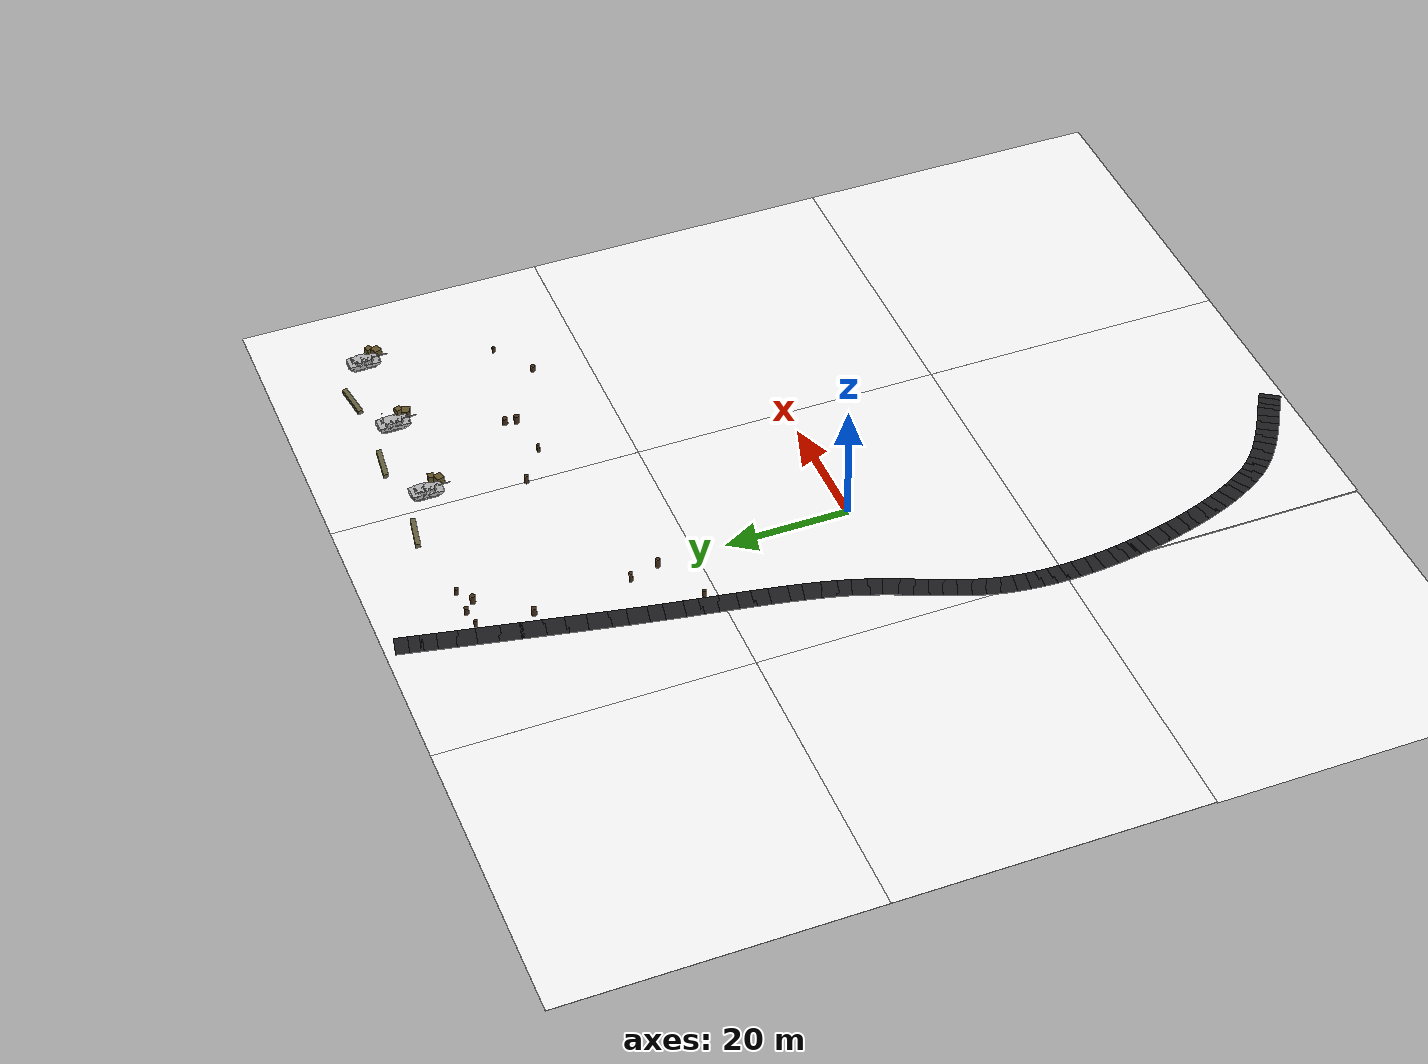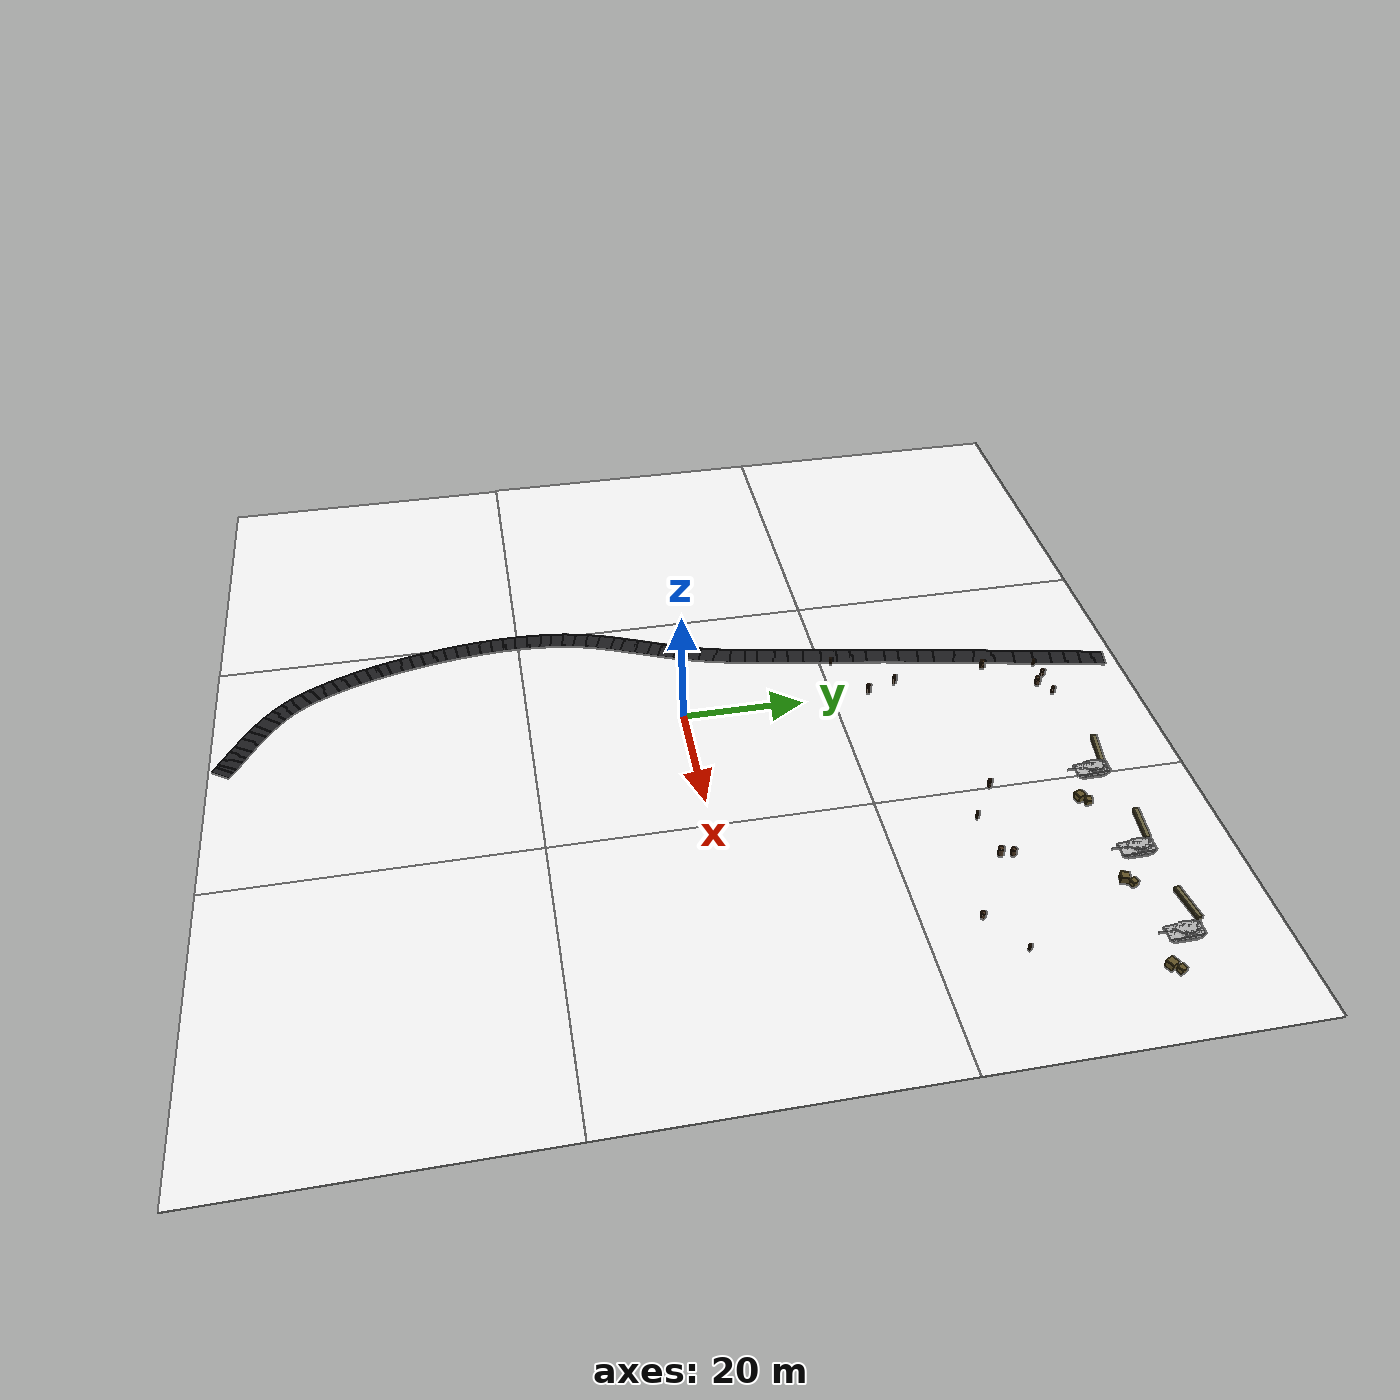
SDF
<sdf version="1.9">
 <world name="military_recon_mini">
  <physics type="ode">
   <max_step_size>0.004</max_step_size>
   <real_time_factor>1.0</real_time_factor>
   <real_time_update_rate>250</real_time_update_rate>
  </physics>
  <gravity>0 0 -9.8</gravity>
  <magnetic_field>6e-06 2.3e-05 -4.2e-05</magnetic_field>
  <atmosphere type="adiabatic"/>
  <scene>
   <grid>false</grid>
   <ambient>0.4 0.4 0.4 1</ambient>
   <background>0.7 0.75 0.8 1</background>
   <shadows>true</shadows>
  </scene>
  <model name="ground_plane">
   <static>true</static>
   <link name="link">
    <collision name="collision">
     <geometry><plane><normal>0 0 1</normal><size>150 150</size></plane></geometry>
    </collision>
   </link>
  </model>
  <include>
   <uri>model://grass_field</uri>
   <name>grass_0</name>
   <pose>-50.000 -50.000 0.000 0.000 0.000 3.142</pose>
  </include>
  <include>
   <uri>model://grass_field</uri>
   <name>grass_1</name>
   <pose>0.000 -50.000 0.000 0.000 0.000 1.571</pose>
  </include>
  <include>
   <uri>model://grass_field</uri>
   <name>grass_2</name>
   <pose>50.000 -50.000 0.000 0.000 0.000 4.712</pose>
  </include>
  <include>
   <uri>model://grass_field</uri>
   <name>grass_3</name>
   <pose>-50.000 0.000 0.000 0.000 0.000 0.000</pose>
  </include>
  <include><uri>model://grass_field</uri><name>grass_4</name></include>
  <include>
   <uri>model://grass_field</uri>
   <name>grass_5</name>
   <pose>50.000 0.000 0.000 0.000 0.000 0.000</pose>
  </include>
  <include>
   <uri>model://grass_field</uri>
   <name>grass_6</name>
   <pose>-50.000 50.000 0.000 0.000 0.000 3.142</pose>
  </include>
  <include>
   <uri>model://grass_field</uri>
   <name>grass_7</name>
   <pose>0.000 50.000 0.000 0.000 0.000 0.000</pose>
  </include>
  <include>
   <uri>model://grass_field</uri>
   <name>grass_8</name>
   <pose>50.000 50.000 0.000 0.000 0.000 1.571</pose>
  </include>
  <model name="tlc_stump_1">
   <static>true</static>
   <pose>-2.280 60.697 0 0 0 4.554</pose>
   <link name="link">
    <visual name="v">
     <pose>0 0 0.568 0 0 0</pose>
     <geometry><cylinder><radius>0.275</radius><length>1.136</length></cylinder></geometry>
     <material><ambient>0.20 0.14 0.08 1</ambient><diffuse>0.28 0.19 0.10 1</diffuse></material>
    </visual>
    <collision name="c">
     <pose>0 0 0.568 0 0 0</pose>
     <geometry><cylinder><radius>0.275</radius><length>1.136</length></cylinder></geometry>
    </collision>
   </link>
  </model>
  <model name="tlc_stump_2">
   <static>true</static>
   <pose>0.638 61.153 0 0 0 4.130</pose>
   <link name="link">
    <visual name="v">
     <pose>0 0 0.640 0 0 0</pose>
     <geometry><cylinder><radius>0.360</radius><length>1.280</length></cylinder></geometry>
     <material><ambient>0.20 0.14 0.08 1</ambient><diffuse>0.28 0.19 0.10 1</diffuse></material>
    </visual>
    <collision name="c">
     <pose>0 0 0.640 0 0 0</pose>
     <geometry><cylinder><radius>0.360</radius><length>1.280</length></cylinder></geometry>
    </collision>
   </link>
  </model>
  <model name="tlc_stump_3">
   <static>true</static>
   <pose>2.607 59.529 0 0 0 4.082</pose>
   <link name="link">
    <visual name="v">
     <pose>0 0 0.711 0 0 0</pose>
     <geometry><cylinder><radius>0.437</radius><length>1.421</length></cylinder></geometry>
     <material><ambient>0.20 0.14 0.08 1</ambient><diffuse>0.28 0.19 0.10 1</diffuse></material>
    </visual>
    <collision name="c">
     <pose>0 0 0.711 0 0 0</pose>
     <geometry><cylinder><radius>0.437</radius><length>1.421</length></cylinder></geometry>
    </collision>
   </link>
  </model>
  <model name="tlc_stump_4">
   <static>true</static>
   <pose>5.213 61.244 0 0 0 1.326</pose>
   <link name="link">
    <visual name="v">
     <pose>0 0 0.601 0 0 0</pose>
     <geometry><cylinder><radius>0.309</radius><length>1.201</length></cylinder></geometry>
     <material><ambient>0.20 0.14 0.08 1</ambient><diffuse>0.28 0.19 0.10 1</diffuse></material>
    </visual>
    <collision name="c">
     <pose>0 0 0.601 0 0 0</pose>
     <geometry><cylinder><radius>0.309</radius><length>1.201</length></cylinder></geometry>
    </collision>
   </link>
  </model>
  <model name="tlc_stump_5">
   <static>true</static>
   <pose>-3.271 51.875 0 0 0 3.190</pose>
   <link name="link">
    <visual name="v">
     <pose>0 0 0.725 0 0 0</pose>
     <geometry><cylinder><radius>0.402</radius><length>1.449</length></cylinder></geometry>
     <material><ambient>0.20 0.14 0.08 1</ambient><diffuse>0.28 0.19 0.10 1</diffuse></material>
    </visual>
    <collision name="c">
     <pose>0 0 0.725 0 0 0</pose>
     <geometry><cylinder><radius>0.402</radius><length>1.449</length></cylinder></geometry>
    </collision>
   </link>
  </model>
  <model name="tlc_stump_6">
   <static>true</static>
   <pose>-1.909 36.066 0 0 0 0.709</pose>
   <link name="link">
    <visual name="v">
     <pose>0 0 0.867 0 0 0</pose>
     <geometry><cylinder><radius>0.296</radius><length>1.735</length></cylinder></geometry>
     <material><ambient>0.20 0.14 0.08 1</ambient><diffuse>0.28 0.19 0.10 1</diffuse></material>
    </visual>
    <collision name="c">
     <pose>0 0 0.867 0 0 0</pose>
     <geometry><cylinder><radius>0.296</radius><length>1.735</length></cylinder></geometry>
    </collision>
   </link>
  </model>
  <model name="tlc_stump_7">
   <static>true</static>
   <pose>-0.506 31.235 0 0 0 0.419</pose>
   <link name="link">
    <visual name="v">
     <pose>0 0 0.845 0 0 0</pose>
     <geometry><cylinder><radius>0.341</radius><length>1.690</length></cylinder></geometry>
     <material><ambient>0.20 0.14 0.08 1</ambient><diffuse>0.28 0.19 0.10 1</diffuse></material>
    </visual>
    <collision name="c">
     <pose>0 0 0.845 0 0 0</pose>
     <geometry><cylinder><radius>0.341</radius><length>1.690</length></cylinder></geometry>
    </collision>
   </link>
  </model>
  <model name="tlc_stump_8">
   <static>true</static>
   <pose>-9.025 26.987 0 0 0 1.934</pose>
   <link name="link">
    <visual name="v">
     <pose>0 0 0.586 0 0 0</pose>
     <geometry><cylinder><radius>0.296</radius><length>1.172</length></cylinder></geometry>
     <material><ambient>0.20 0.14 0.08 1</ambient><diffuse>0.28 0.19 0.10 1</diffuse></material>
    </visual>
    <collision name="c">
     <pose>0 0 0.586 0 0 0</pose>
     <geometry><cylinder><radius>0.296</radius><length>1.172</length></cylinder></geometry>
    </collision>
   </link>
  </model>
  <model name="tlm_stump_0">
   <static>true</static>
   <pose>24.857 43.441 0 0 0 2.416</pose>
   <link name="link">
    <visual name="v">
     <pose>0 0 0.758 0 0 0</pose>
     <geometry><cylinder><radius>0.336</radius><length>1.517</length></cylinder></geometry>
     <material><ambient>0.20 0.14 0.08 1</ambient><diffuse>0.28 0.19 0.10 1</diffuse></material>
    </visual>
    <collision name="c">
     <pose>0 0 0.758 0 0 0</pose>
     <geometry><cylinder><radius>0.336</radius><length>1.517</length></cylinder></geometry>
    </collision>
   </link>
  </model>
  <model name="tlm_stump_1">
   <static>true</static>
   <pose>30.989 39.410 0 0 0 2.974</pose>
   <link name="link">
    <visual name="v">
     <pose>0 0 0.735 0 0 0</pose>
     <geometry><cylinder><radius>0.250</radius><length>1.470</length></cylinder></geometry>
     <material><ambient>0.20 0.14 0.08 1</ambient><diffuse>0.28 0.19 0.10 1</diffuse></material>
    </visual>
    <collision name="c">
     <pose>0 0 0.735 0 0 0</pose>
     <geometry><cylinder><radius>0.250</radius><length>1.470</length></cylinder></geometry>
    </collision>
   </link>
  </model>
  <model name="tlm_stump_2">
   <static>true</static>
   <pose>39.168 42.152 0 0 0 0.625</pose>
   <link name="link">
    <visual name="v">
     <pose>0 0 0.620 0 0 0</pose>
     <geometry><cylinder><radius>0.439</radius><length>1.240</length></cylinder></geometry>
     <material><ambient>0.20 0.14 0.08 1</ambient><diffuse>0.28 0.19 0.10 1</diffuse></material>
    </visual>
    <collision name="c">
     <pose>0 0 0.620 0 0 0</pose>
     <geometry><cylinder><radius>0.439</radius><length>1.240</length></cylinder></geometry>
    </collision>
   </link>
  </model>
  <model name="tlm_stump_3">
   <static>true</static>
   <pose>38.815 40.336 0 0 0 0.007</pose>
   <link name="link">
    <visual name="v">
     <pose>0 0 0.715 0 0 0</pose>
     <geometry><cylinder><radius>0.449</radius><length>1.430</length></cylinder></geometry>
     <material><ambient>0.20 0.14 0.08 1</ambient><diffuse>0.28 0.19 0.10 1</diffuse></material>
    </visual>
    <collision name="c">
     <pose>0 0 0.715 0 0 0</pose>
     <geometry><cylinder><radius>0.449</radius><length>1.430</length></cylinder></geometry>
    </collision>
   </link>
  </model>
  <model name="tlm_stump_4">
   <static>true</static>
   <pose>49.836 33.850 0 0 0 4.689</pose>
   <link name="link">
    <visual name="v">
     <pose>0 0 0.513 0 0 0</pose>
     <geometry><cylinder><radius>0.383</radius><length>1.026</length></cylinder></geometry>
     <material><ambient>0.20 0.14 0.08 1</ambient><diffuse>0.28 0.19 0.10 1</diffuse></material>
    </visual>
    <collision name="c">
     <pose>0 0 0.513 0 0 0</pose>
     <geometry><cylinder><radius>0.383</radius><length>1.026</length></cylinder></geometry>
    </collision>
   </link>
  </model>
  <model name="tlm_stump_5">
   <static>true</static>
   <pose>56.606 38.242 0 0 0 4.817</pose>
   <link name="link">
    <visual name="v">
     <pose>0 0 0.516 0 0 0</pose>
     <geometry><cylinder><radius>0.257</radius><length>1.033</length></cylinder></geometry>
     <material><ambient>0.20 0.14 0.08 1</ambient><diffuse>0.28 0.19 0.10 1</diffuse></material>
    </visual>
    <collision name="c">
     <pose>0 0 0.516 0 0 0</pose>
     <geometry><cylinder><radius>0.257</radius><length>1.033</length></cylinder></geometry>
    </collision>
   </link>
  </model>
  <include>
   <uri>model://m1-abrams</uri>
   <name>abrams_0</name>
   <pose>25.000 60.000 1.5 1.57 0.000 1.57</pose>
  </include>
  <model name="sandbags_0">
   <static>true</static>
   <pose>20.000 63.000 0.35 0 0 -0.166</pose>
   <link name="link">
    <visual name="v">
     <geometry><box><size>6.00 0.8 0.7</size></box></geometry>
     <material><ambient>0.30 0.28 0.18 1</ambient><diffuse>0.42 0.39 0.25 1</diffuse></material>
    </visual>
    <collision name="c"><geometry><box><size>6.00 0.8 0.7</size></box></geometry></collision>
   </link>
  </model>
  <model name="crate_0">
   <static>true</static>
   <pose>30.000 56.000 0.650 0 0 0.289</pose>
   <link name="link">
    <visual name="v">
     <geometry><box><size>1.30 1.30 1.30</size></box></geometry>
     <material><ambient>0.28 0.24 0.12 1</ambient><diffuse>0.40 0.34 0.16 1</diffuse></material>
    </visual>
    <collision name="c"><geometry><box><size>1.30 1.30 1.30</size></box></geometry></collision>
   </link>
  </model>
  <model name="crate_1">
   <static>true</static>
   <pose>31.000 57.000 0.500 0 0 1.495</pose>
   <link name="link">
    <visual name="v">
     <geometry><box><size>1.00 1.00 1.00</size></box></geometry>
     <material><ambient>0.28 0.24 0.12 1</ambient><diffuse>0.40 0.34 0.16 1</diffuse></material>
    </visual>
    <collision name="c"><geometry><box><size>1.00 1.00 1.00</size></box></geometry></collision>
   </link>
  </model>
  <include>
   <uri>model://m1-abrams</uri>
   <name>abrams_1</name>
   <pose>42.000 60.000 1.5 1.57 0.000 1.57</pose>
  </include>
  <model name="sandbags_1">
   <static>true</static>
   <pose>37.000 63.000 0.35 0 0 -0.106</pose>
   <link name="link">
    <visual name="v">
     <geometry><box><size>6.00 0.8 0.7</size></box></geometry>
     <material><ambient>0.30 0.28 0.18 1</ambient><diffuse>0.42 0.39 0.25 1</diffuse></material>
    </visual>
    <collision name="c"><geometry><box><size>6.00 0.8 0.7</size></box></geometry></collision>
   </link>
  </model>
  <model name="crate_2">
   <static>true</static>
   <pose>47.000 56.000 0.650 0 0 1.251</pose>
   <link name="link">
    <visual name="v">
     <geometry><box><size>1.30 1.30 1.30</size></box></geometry>
     <material><ambient>0.28 0.24 0.12 1</ambient><diffuse>0.40 0.34 0.16 1</diffuse></material>
    </visual>
    <collision name="c"><geometry><box><size>1.30 1.30 1.30</size></box></geometry></collision>
   </link>
  </model>
  <model name="crate_3">
   <static>true</static>
   <pose>48.000 57.000 0.500 0 0 1.861</pose>
   <link name="link">
    <visual name="v">
     <geometry><box><size>1.00 1.00 1.00</size></box></geometry>
     <material><ambient>0.28 0.24 0.12 1</ambient><diffuse>0.40 0.34 0.16 1</diffuse></material>
    </visual>
    <collision name="c"><geometry><box><size>1.00 1.00 1.00</size></box></geometry></collision>
   </link>
  </model>
  <include>
   <uri>model://m1-abrams</uri>
   <name>abrams_2</name>
   <pose>58.000 60.000 1.5 1.57 0.000 1.57</pose>
  </include>
  <model name="sandbags_2">
   <static>true</static>
   <pose>53.000 63.000 0.35 0 0 0.139</pose>
   <link name="link">
    <visual name="v">
     <geometry><box><size>6.00 0.8 0.7</size></box></geometry>
     <material><ambient>0.30 0.28 0.18 1</ambient><diffuse>0.42 0.39 0.25 1</diffuse></material>
    </visual>
    <collision name="c"><geometry><box><size>6.00 0.8 0.7</size></box></geometry></collision>
   </link>
  </model>
  <model name="crate_4">
   <static>true</static>
   <pose>63.000 56.000 0.650 0 0 1.993</pose>
   <link name="link">
    <visual name="v">
     <geometry><box><size>1.30 1.30 1.30</size></box></geometry>
     <material><ambient>0.28 0.24 0.12 1</ambient><diffuse>0.40 0.34 0.16 1</diffuse></material>
    </visual>
    <collision name="c"><geometry><box><size>1.30 1.30 1.30</size></box></geometry></collision>
   </link>
  </model>
  <model name="crate_5">
   <static>true</static>
   <pose>64.000 57.000 0.500 0 0 0.363</pose>
   <link name="link">
    <visual name="v">
     <geometry><box><size>1.00 1.00 1.00</size></box></geometry>
     <material><ambient>0.28 0.24 0.12 1</ambient><diffuse>0.40 0.34 0.16 1</diffuse></material>
    </visual>
    <collision name="c"><geometry><box><size>1.00 1.00 1.00</size></box></geometry></collision>
   </link>
  </model>
  <model name="road_0">
   <static>true</static>
   <pose>-2.171 72.174 0.02 0 0 -1.7745</pose>
   <link name="link">
    <visual name="v">
     <geometry><box><size>2.087 3.50 0.04</size></box></geometry>
     <material><ambient>0.08 0.08 0.09 1</ambient><diffuse>0.12 0.12 0.13 1</diffuse></material>
    </visual>
   </link>
  </model>
  <model name="road_1">
   <static>true</static>
   <pose>-2.557 70.307 0.02 0 0 -1.7753</pose>
   <link name="link">
    <visual name="v">
     <geometry><box><size>2.526 3.50 0.04</size></box></geometry>
     <material><ambient>0.08 0.08 0.09 1</ambient><diffuse>0.12 0.12 0.13 1</diffuse></material>
    </visual>
   </link>
  </model>
  <model name="road_2">
   <static>true</static>
   <pose>-3.027 68.043 0.02 0 0 -1.7756</pose>
   <link name="link">
    <visual name="v">
     <geometry><box><size>2.898 3.50 0.04</size></box></geometry>
     <material><ambient>0.08 0.08 0.09 1</ambient><diffuse>0.12 0.12 0.13 1</diffuse></material>
    </visual>
   </link>
  </model>
  <model name="road_3">
   <static>true</static>
   <pose>-3.567 65.447 0.02 0 0 -1.7757</pose>
   <link name="link">
    <visual name="v">
     <geometry><box><size>3.205 3.50 0.04</size></box></geometry>
     <material><ambient>0.08 0.08 0.09 1</ambient><diffuse>0.12 0.12 0.13 1</diffuse></material>
    </visual>
   </link>
  </model>
  <model name="road_4">
   <static>true</static>
   <pose>-4.161 62.583 0.02 0 0 -1.7755</pose>
   <link name="link">
    <visual name="v">
     <geometry><box><size>3.446 3.50 0.04</size></box></geometry>
     <material><ambient>0.08 0.08 0.09 1</ambient><diffuse>0.12 0.12 0.13 1</diffuse></material>
    </visual>
   </link>
  </model>
  <model name="road_5">
   <static>true</static>
   <pose>-4.798 59.515 0.02 0 0 -1.7752</pose>
   <link name="link">
    <visual name="v">
     <geometry><box><size>3.621 3.50 0.04</size></box></geometry>
     <material><ambient>0.08 0.08 0.09 1</ambient><diffuse>0.12 0.12 0.13 1</diffuse></material>
    </visual>
   </link>
  </model>
  <model name="road_6">
   <static>true</static>
   <pose>-5.462 56.307 0.02 0 0 -1.7748</pose>
   <link name="link">
    <visual name="v">
     <geometry><box><size>3.731 3.50 0.04</size></box></geometry>
     <material><ambient>0.08 0.08 0.09 1</ambient><diffuse>0.12 0.12 0.13 1</diffuse></material>
    </visual>
   </link>
  </model>
  <model name="road_7">
   <static>true</static>
   <pose>-6.141 53.023 0.02 0 0 -1.7742</pose>
   <link name="link">
    <visual name="v">
     <geometry><box><size>3.775 3.50 0.04</size></box></geometry>
     <material><ambient>0.08 0.08 0.09 1</ambient><diffuse>0.12 0.12 0.13 1</diffuse></material>
    </visual>
   </link>
  </model>
  <model name="road_8">
   <static>true</static>
   <pose>-6.819 49.728 0.02 0 0 -1.7734</pose>
   <link name="link">
    <visual name="v">
     <geometry><box><size>3.753 3.50 0.04</size></box></geometry>
     <material><ambient>0.08 0.08 0.09 1</ambient><diffuse>0.12 0.12 0.13 1</diffuse></material>
    </visual>
   </link>
  </model>
  <model name="road_9">
   <static>true</static>
   <pose>-7.483 46.486 0.02 0 0 -1.7724</pose>
   <link name="link">
    <visual name="v">
     <geometry><box><size>3.666 3.50 0.04</size></box></geometry>
     <material><ambient>0.08 0.08 0.09 1</ambient><diffuse>0.12 0.12 0.13 1</diffuse></material>
    </visual>
   </link>
  </model>
  <model name="road_10">
   <static>true</static>
   <pose>-8.120 43.362 0.02 0 0 -1.7711</pose>
   <link name="link">
    <visual name="v">
     <geometry><box><size>3.512 3.50 0.04</size></box></geometry>
     <material><ambient>0.08 0.08 0.09 1</ambient><diffuse>0.12 0.12 0.13 1</diffuse></material>
    </visual>
   </link>
  </model>
  <model name="road_11">
   <static>true</static>
   <pose>-8.715 40.418 0.02 0 0 -1.7693</pose>
   <link name="link">
    <visual name="v">
     <geometry><box><size>3.293 3.50 0.04</size></box></geometry>
     <material><ambient>0.08 0.08 0.09 1</ambient><diffuse>0.12 0.12 0.13 1</diffuse></material>
    </visual>
   </link>
  </model>
  <model name="road_12">
   <static>true</static>
   <pose>-9.263 37.646 0.02 0 0 -1.7625</pose>
   <link name="link">
    <visual name="v">
     <geometry><box><size>3.158 3.50 0.04</size></box></geometry>
     <material><ambient>0.08 0.08 0.09 1</ambient><diffuse>0.12 0.12 0.13 1</diffuse></material>
    </visual>
   </link>
  </model>
  <model name="road_13">
   <static>true</static>
   <pose>-9.774 34.941 0.02 0 0 -1.7529</pose>
   <link name="link">
    <visual name="v">
     <geometry><box><size>3.148 3.50 0.04</size></box></geometry>
     <material><ambient>0.08 0.08 0.09 1</ambient><diffuse>0.12 0.12 0.13 1</diffuse></material>
    </visual>
   </link>
  </model>
  <model name="road_14">
   <static>true</static>
   <pose>-10.262 32.244 0.02 0 0 -1.7461</pose>
   <link name="link">
    <visual name="v">
     <geometry><box><size>3.134 3.50 0.04</size></box></geometry>
     <material><ambient>0.08 0.08 0.09 1</ambient><diffuse>0.12 0.12 0.13 1</diffuse></material>
    </visual>
   </link>
  </model>
  <model name="road_15">
   <static>true</static>
   <pose>-10.731 29.560 0.02 0 0 -1.7421</pose>
   <link name="link">
    <visual name="v">
     <geometry><box><size>3.116 3.50 0.04</size></box></geometry>
     <material><ambient>0.08 0.08 0.09 1</ambient><diffuse>0.12 0.12 0.13 1</diffuse></material>
    </visual>
   </link>
  </model>
  <model name="road_16">
   <static>true</static>
   <pose>-11.191 26.895 0.02 0 0 -1.7409</pose>
   <link name="link">
    <visual name="v">
     <geometry><box><size>3.094 3.50 0.04</size></box></geometry>
     <material><ambient>0.08 0.08 0.09 1</ambient><diffuse>0.12 0.12 0.13 1</diffuse></material>
    </visual>
   </link>
  </model>
  <model name="road_17">
   <static>true</static>
   <pose>-11.647 24.252 0.02 0 0 -1.7425</pose>
   <link name="link">
    <visual name="v">
     <geometry><box><size>3.069 3.50 0.04</size></box></geometry>
     <material><ambient>0.08 0.08 0.09 1</ambient><diffuse>0.12 0.12 0.13 1</diffuse></material>
    </visual>
   </link>
  </model>
  <model name="road_18">
   <static>true</static>
   <pose>-12.106 21.638 0.02 0 0 -1.7471</pose>
   <link name="link">
    <visual name="v">
     <geometry><box><size>3.039 3.50 0.04</size></box></geometry>
     <material><ambient>0.08 0.08 0.09 1</ambient><diffuse>0.12 0.12 0.13 1</diffuse></material>
    </visual>
   </link>
  </model>
  <model name="road_19">
   <static>true</static>
   <pose>-12.576 19.059 0.02 0 0 -1.7548</pose>
   <link name="link">
    <visual name="v">
     <geometry><box><size>3.006 3.50 0.04</size></box></geometry>
     <material><ambient>0.08 0.08 0.09 1</ambient><diffuse>0.12 0.12 0.13 1</diffuse></material>
    </visual>
   </link>
  </model>
  <model name="road_20">
   <static>true</static>
   <pose>-13.064 16.518 0.02 0 0 -1.7658</pose>
   <link name="link">
    <visual name="v">
     <geometry><box><size>2.969 3.50 0.04</size></box></geometry>
     <material><ambient>0.08 0.08 0.09 1</ambient><diffuse>0.12 0.12 0.13 1</diffuse></material>
    </visual>
   </link>
  </model>
  <model name="road_21">
   <static>true</static>
   <pose>-13.575 14.021 0.02 0 0 -1.7802</pose>
   <link name="link">
    <visual name="v">
     <geometry><box><size>2.928 3.50 0.04</size></box></geometry>
     <material><ambient>0.08 0.08 0.09 1</ambient><diffuse>0.12 0.12 0.13 1</diffuse></material>
    </visual>
   </link>
  </model>
  <model name="road_22">
   <static>true</static>
   <pose>-14.118 11.574 0.02 0 0 -1.7982</pose>
   <link name="link">
    <visual name="v">
     <geometry><box><size>2.885 3.50 0.04</size></box></geometry>
     <material><ambient>0.08 0.08 0.09 1</ambient><diffuse>0.12 0.12 0.13 1</diffuse></material>
    </visual>
   </link>
  </model>
  <model name="road_23">
   <static>true</static>
   <pose>-14.699 9.182 0.02 0 0 -1.8201</pose>
   <link name="link">
    <visual name="v">
     <geometry><box><size>2.839 3.50 0.04</size></box></geometry>
     <material><ambient>0.08 0.08 0.09 1</ambient><diffuse>0.12 0.12 0.13 1</diffuse></material>
    </visual>
   </link>
  </model>
  <model name="road_24">
   <static>true</static>
   <pose>-15.338 6.852 0.02 0 0 -1.8574</pose>
   <link name="link">
    <visual name="v">
     <geometry><box><size>2.794 3.50 0.04</size></box></geometry>
     <material><ambient>0.08 0.08 0.09 1</ambient><diffuse>0.12 0.12 0.13 1</diffuse></material>
    </visual>
   </link>
  </model>
  <model name="road_25">
   <static>true</static>
   <pose>-16.059 4.589 0.02 0 0 -1.9016</pose>
   <link name="link">
    <visual name="v">
     <geometry><box><size>2.757 3.50 0.04</size></box></geometry>
     <material><ambient>0.08 0.08 0.09 1</ambient><diffuse>0.12 0.12 0.13 1</diffuse></material>
    </visual>
   </link>
  </model>
  <model name="road_26">
   <static>true</static>
   <pose>-16.858 2.390 0.02 0 0 -1.9367</pose>
   <link name="link">
    <visual name="v">
     <geometry><box><size>2.724 3.50 0.04</size></box></geometry>
     <material><ambient>0.08 0.08 0.09 1</ambient><diffuse>0.12 0.12 0.13 1</diffuse></material>
    </visual>
   </link>
  </model>
  <model name="road_27">
   <static>true</static>
   <pose>-17.711 0.245 0.02 0 0 -1.9622</pose>
   <link name="link">
    <visual name="v">
     <geometry><box><size>2.693 3.50 0.04</size></box></geometry>
     <material><ambient>0.08 0.08 0.09 1</ambient><diffuse>0.12 0.12 0.13 1</diffuse></material>
    </visual>
   </link>
  </model>
  <model name="road_28">
   <static>true</static>
   <pose>-18.596 -1.854 0.02 0 0 -1.9777</pose>
   <link name="link">
    <visual name="v">
     <geometry><box><size>2.663 3.50 0.04</size></box></geometry>
     <material><ambient>0.08 0.08 0.09 1</ambient><diffuse>0.12 0.12 0.13 1</diffuse></material>
    </visual>
   </link>
  </model>
  <model name="road_29">
   <static>true</static>
   <pose>-19.491 -3.915 0.02 0 0 -1.9829</pose>
   <link name="link">
    <visual name="v">
     <geometry><box><size>2.632 3.50 0.04</size></box></geometry>
     <material><ambient>0.08 0.08 0.09 1</ambient><diffuse>0.12 0.12 0.13 1</diffuse></material>
    </visual>
   </link>
  </model>
  <model name="road_30">
   <static>true</static>
   <pose>-20.372 -5.948 0.02 0 0 -1.9772</pose>
   <link name="link">
    <visual name="v">
     <geometry><box><size>2.600 3.50 0.04</size></box></geometry>
     <material><ambient>0.08 0.08 0.09 1</ambient><diffuse>0.12 0.12 0.13 1</diffuse></material>
    </visual>
   </link>
  </model>
  <model name="road_31">
   <static>true</static>
   <pose>-21.218 -7.961 0.02 0 0 -1.9602</pose>
   <link name="link">
    <visual name="v">
     <geometry><box><size>2.567 3.50 0.04</size></box></geometry>
     <material><ambient>0.08 0.08 0.09 1</ambient><diffuse>0.12 0.12 0.13 1</diffuse></material>
    </visual>
   </link>
  </model>
  <model name="road_32">
   <static>true</static>
   <pose>-22.006 -9.962 0.02 0 0 -1.9313</pose>
   <link name="link">
    <visual name="v">
     <geometry><box><size>2.535 3.50 0.04</size></box></geometry>
     <material><ambient>0.08 0.08 0.09 1</ambient><diffuse>0.12 0.12 0.13 1</diffuse></material>
    </visual>
   </link>
  </model>
  <model name="road_33">
   <static>true</static>
   <pose>-22.713 -11.961 0.02 0 0 -1.8901</pose>
   <link name="link">
    <visual name="v">
     <geometry><box><size>2.506 3.50 0.04</size></box></geometry>
     <material><ambient>0.08 0.08 0.09 1</ambient><diffuse>0.12 0.12 0.13 1</diffuse></material>
    </visual>
   </link>
  </model>
  <model name="road_34">
   <static>true</static>
   <pose>-23.317 -13.966 0.02 0 0 -1.8363</pose>
   <link name="link">
    <visual name="v">
     <geometry><box><size>2.483 3.50 0.04</size></box></geometry>
     <material><ambient>0.08 0.08 0.09 1</ambient><diffuse>0.12 0.12 0.13 1</diffuse></material>
    </visual>
   </link>
  </model>
  <model name="road_35">
   <static>true</static>
   <pose>-23.795 -15.985 0.02 0 0 -1.7699</pose>
   <link name="link">
    <visual name="v">
     <geometry><box><size>2.470 3.50 0.04</size></box></geometry>
     <material><ambient>0.08 0.08 0.09 1</ambient><diffuse>0.12 0.12 0.13 1</diffuse></material>
    </visual>
   </link>
  </model>
  <model name="road_36">
   <static>true</static>
   <pose>-24.145 -18.022 0.02 0 0 -1.7112</pose>
   <link name="link">
    <visual name="v">
     <geometry><box><size>2.465 3.50 0.04</size></box></geometry>
     <material><ambient>0.08 0.08 0.09 1</ambient><diffuse>0.12 0.12 0.13 1</diffuse></material>
    </visual>
   </link>
  </model>
  <model name="road_37">
   <static>true</static>
   <pose>-24.391 -20.069 0.02 0 0 -1.6701</pose>
   <link name="link">
    <visual name="v">
     <geometry><box><size>2.458 3.50 0.04</size></box></geometry>
     <material><ambient>0.08 0.08 0.09 1</ambient><diffuse>0.12 0.12 0.13 1</diffuse></material>
    </visual>
   </link>
  </model>
  <model name="road_38">
   <static>true</static>
   <pose>-24.555 -22.117 0.02 0 0 -1.6313</pose>
   <link name="link">
    <visual name="v">
     <geometry><box><size>2.452 3.50 0.04</size></box></geometry>
     <material><ambient>0.08 0.08 0.09 1</ambient><diffuse>0.12 0.12 0.13 1</diffuse></material>
    </visual>
   </link>
  </model>
  <model name="road_39">
   <static>true</static>
   <pose>-24.642 -24.163 0.02 0 0 -1.5950</pose>
   <link name="link">
    <visual name="v">
     <geometry><box><size>2.445 3.50 0.04</size></box></geometry>
     <material><ambient>0.08 0.08 0.09 1</ambient><diffuse>0.12 0.12 0.13 1</diffuse></material>
    </visual>
   </link>
  </model>
  <model name="road_40">
   <static>true</static>
   <pose>-24.657 -26.204 0.02 0 0 -1.5610</pose>
   <link name="link">
    <visual name="v">
     <geometry><box><size>2.438 3.50 0.04</size></box></geometry>
     <material><ambient>0.08 0.08 0.09 1</ambient><diffuse>0.12 0.12 0.13 1</diffuse></material>
    </visual>
   </link>
  </model>
  <model name="road_41">
   <static>true</static>
   <pose>-24.605 -28.236 0.02 0 0 -1.5293</pose>
   <link name="link">
    <visual name="v">
     <geometry><box><size>2.429 3.50 0.04</size></box></geometry>
     <material><ambient>0.08 0.08 0.09 1</ambient><diffuse>0.12 0.12 0.13 1</diffuse></material>
    </visual>
   </link>
  </model>
  <model name="road_42">
   <static>true</static>
   <pose>-24.491 -30.257 0.02 0 0 -1.4998</pose>
   <link name="link">
    <visual name="v">
     <geometry><box><size>2.418 3.50 0.04</size></box></geometry>
     <material><ambient>0.08 0.08 0.09 1</ambient><diffuse>0.12 0.12 0.13 1</diffuse></material>
    </visual>
   </link>
  </model>
  <model name="road_43">
   <static>true</static>
   <pose>-24.321 -32.261 0.02 0 0 -1.4724</pose>
   <link name="link">
    <visual name="v">
     <geometry><box><size>2.406 3.50 0.04</size></box></geometry>
     <material><ambient>0.08 0.08 0.09 1</ambient><diffuse>0.12 0.12 0.13 1</diffuse></material>
    </visual>
   </link>
  </model>
  <model name="road_44">
   <static>true</static>
   <pose>-24.099 -34.247 0.02 0 0 -1.4471</pose>
   <link name="link">
    <visual name="v">
     <geometry><box><size>2.390 3.50 0.04</size></box></geometry>
     <material><ambient>0.08 0.08 0.09 1</ambient><diffuse>0.12 0.12 0.13 1</diffuse></material>
    </visual>
   </link>
  </model>
  <model name="road_45">
   <static>true</static>
   <pose>-23.832 -36.210 0.02 0 0 -1.4237</pose>
   <link name="link">
    <visual name="v">
     <geometry><box><size>2.372 3.50 0.04</size></box></geometry>
     <material><ambient>0.08 0.08 0.09 1</ambient><diffuse>0.12 0.12 0.13 1</diffuse></material>
    </visual>
   </link>
  </model>
  <model name="road_46">
   <static>true</static>
   <pose>-23.524 -38.147 0.02 0 0 -1.4022</pose>
   <link name="link">
    <visual name="v">
     <geometry><box><size>2.351 3.50 0.04</size></box></geometry>
     <material><ambient>0.08 0.08 0.09 1</ambient><diffuse>0.12 0.12 0.13 1</diffuse></material>
    </visual>
   </link>
  </model>
  <model name="road_47">
   <static>true</static>
   <pose>-23.180 -40.054 0.02 0 0 -1.3826</pose>
   <link name="link">
    <visual name="v">
     <geometry><box><size>2.326 3.50 0.04</size></box></geometry>
     <material><ambient>0.08 0.08 0.09 1</ambient><diffuse>0.12 0.12 0.13 1</diffuse></material>
    </visual>
   </link>
  </model>
  <model name="road_48">
   <static>true</static>
   <pose>-22.800 -41.943 0.02 0 0 -1.3622</pose>
   <link name="link">
    <visual name="v">
     <geometry><box><size>2.329 3.50 0.04</size></box></geometry>
     <material><ambient>0.08 0.08 0.09 1</ambient><diffuse>0.12 0.12 0.13 1</diffuse></material>
    </visual>
   </link>
  </model>
  <model name="road_49">
   <static>true</static>
   <pose>-22.377 -43.838 0.02 0 0 -1.3396</pose>
   <link name="link">
    <visual name="v">
     <geometry><box><size>2.355 3.50 0.04</size></box></geometry>
     <material><ambient>0.08 0.08 0.09 1</ambient><diffuse>0.12 0.12 0.13 1</diffuse></material>
    </visual>
   </link>
  </model>
  <model name="road_50">
   <static>true</static>
   <pose>-21.905 -45.742 0.02 0 0 -1.3159</pose>
   <link name="link">
    <visual name="v">
     <geometry><box><size>2.370 3.50 0.04</size></box></geometry>
     <material><ambient>0.08 0.08 0.09 1</ambient><diffuse>0.12 0.12 0.13 1</diffuse></material>
    </visual>
   </link>
  </model>
  <model name="road_51">
   <static>true</static>
   <pose>-21.384 -47.644 0.02 0 0 -1.2910</pose>
   <link name="link">
    <visual name="v">
     <geometry><box><size>2.374 3.50 0.04</size></box></geometry>
     <material><ambient>0.08 0.08 0.09 1</ambient><diffuse>0.12 0.12 0.13 1</diffuse></material>
    </visual>
   </link>
  </model>
  <model name="road_52">
   <static>true</static>
   <pose>-20.814 -49.531 0.02 0 0 -1.2643</pose>
   <link name="link">
    <visual name="v">
     <geometry><box><size>2.368 3.50 0.04</size></box></geometry>
     <material><ambient>0.08 0.08 0.09 1</ambient><diffuse>0.12 0.12 0.13 1</diffuse></material>
    </visual>
   </link>
  </model>
  <model name="road_53">
   <static>true</static>
   <pose>-20.196 -51.391 0.02 0 0 -1.2355</pose>
   <link name="link">
    <visual name="v">
     <geometry><box><size>2.352 3.50 0.04</size></box></geometry>
     <material><ambient>0.08 0.08 0.09 1</ambient><diffuse>0.12 0.12 0.13 1</diffuse></material>
    </visual>
   </link>
  </model>
  <model name="road_54">
   <static>true</static>
   <pose>-19.530 -53.212 0.02 0 0 -1.2040</pose>
   <link name="link">
    <visual name="v">
     <geometry><box><size>2.327 3.50 0.04</size></box></geometry>
     <material><ambient>0.08 0.08 0.09 1</ambient><diffuse>0.12 0.12 0.13 1</diffuse></material>
    </visual>
   </link>
  </model>
  <model name="road_55">
   <static>true</static>
   <pose>-18.814 -54.981 0.02 0 0 -1.1691</pose>
   <link name="link">
    <visual name="v">
     <geometry><box><size>2.292 3.50 0.04</size></box></geometry>
     <material><ambient>0.08 0.08 0.09 1</ambient><diffuse>0.12 0.12 0.13 1</diffuse></material>
    </visual>
   </link>
  </model>
  <model name="road_56">
   <static>true</static>
   <pose>-18.050 -56.688 0.02 0 0 -1.1302</pose>
   <link name="link">
    <visual name="v">
     <geometry><box><size>2.248 3.50 0.04</size></box></geometry>
     <material><ambient>0.08 0.08 0.09 1</ambient><diffuse>0.12 0.12 0.13 1</diffuse></material>
    </visual>
   </link>
  </model>
  <model name="road_57">
   <static>true</static>
   <pose>-17.238 -58.318 0.02 0 0 -1.0863</pose>
   <link name="link">
    <visual name="v">
     <geometry><box><size>2.197 3.50 0.04</size></box></geometry>
     <material><ambient>0.08 0.08 0.09 1</ambient><diffuse>0.12 0.12 0.13 1</diffuse></material>
    </visual>
   </link>
  </model>
  <model name="road_58">
   <static>true</static>
   <pose>-16.377 -59.862 0.02 0 0 -1.0365</pose>
   <link name="link">
    <visual name="v">
     <geometry><box><size>2.139 3.50 0.04</size></box></geometry>
     <material><ambient>0.08 0.08 0.09 1</ambient><diffuse>0.12 0.12 0.13 1</diffuse></material>
    </visual>
   </link>
  </model>
  <model name="road_59">
   <static>true</static>
   <pose>-15.467 -61.305 0.02 0 0 -0.9792</pose>
   <link name="link">
    <visual name="v">
     <geometry><box><size>2.075 3.50 0.04</size></box></geometry>
     <material><ambient>0.08 0.08 0.09 1</ambient><diffuse>0.12 0.12 0.13 1</diffuse></material>
    </visual>
   </link>
  </model>
  <model name="road_60">
   <static>true</static>
   <pose>-14.474 -62.651 0.02 0 0 -0.8908</pose>
   <link name="link">
    <visual name="v">
     <geometry><box><size>2.074 3.50 0.04</size></box></geometry>
     <material><ambient>0.08 0.08 0.09 1</ambient><diffuse>0.12 0.12 0.13 1</diffuse></material>
    </visual>
   </link>
  </model>
  <model name="road_61">
   <static>true</static>
   <pose>-13.339 -63.921 0.02 0 0 -0.7942</pose>
   <link name="link">
    <visual name="v">
     <geometry><box><size>2.135 3.50 0.04</size></box></geometry>
     <material><ambient>0.08 0.08 0.09 1</ambient><diffuse>0.12 0.12 0.13 1</diffuse></material>
    </visual>
   </link>
  </model>
  <model name="road_62">
   <static>true</static>
   <pose>-12.061 -65.125 0.02 0 0 -0.7181</pose>
   <link name="link">
    <visual name="v">
     <geometry><box><size>2.181 3.50 0.04</size></box></geometry>
     <material><ambient>0.08 0.08 0.09 1</ambient><diffuse>0.12 0.12 0.13 1</diffuse></material>
    </visual>
   </link>
  </model>
  <model name="road_63">
   <static>true</static>
   <pose>-10.677 -66.263 0.02 0 0 -0.6582</pose>
   <link name="link">
    <visual name="v">
     <geometry><box><size>2.205 3.50 0.04</size></box></geometry>
     <material><ambient>0.08 0.08 0.09 1</ambient><diffuse>0.12 0.12 0.13 1</diffuse></material>
    </visual>
   </link>
  </model>
  <model name="road_64">
   <static>true</static>
   <pose>-9.225 -67.332 0.02 0 0 -0.6112</pose>
   <link name="link">
    <visual name="v">
     <geometry><box><size>2.203 3.50 0.04</size></box></geometry>
     <material><ambient>0.08 0.08 0.09 1</ambient><diffuse>0.12 0.12 0.13 1</diffuse></material>
    </visual>
   </link>
  </model>
  <model name="road_65">
   <static>true</static>
   <pose>-7.743 -68.331 0.02 0 0 -0.5749</pose>
   <link name="link">
    <visual name="v">
     <geometry><box><size>2.171 3.50 0.04</size></box></geometry>
     <material><ambient>0.08 0.08 0.09 1</ambient><diffuse>0.12 0.12 0.13 1</diffuse></material>
    </visual>
   </link>
  </model>
  <model name="road_66">
   <static>true</static>
   <pose>-6.271 -69.258 0.02 0 0 -0.5479</pose>
   <link name="link">
    <visual name="v">
     <geometry><box><size>2.109 3.50 0.04</size></box></geometry>
     <material><ambient>0.08 0.08 0.09 1</ambient><diffuse>0.12 0.12 0.13 1</diffuse></material>
    </visual>
   </link>
  </model>
  <model name="road_67">
   <static>true</static>
   <pose>-4.845 -70.111 0.02 0 0 -0.5298</pose>
   <link name="link">
    <visual name="v">
     <geometry><box><size>2.014 3.50 0.04</size></box></geometry>
     <material><ambient>0.08 0.08 0.09 1</ambient><diffuse>0.12 0.12 0.13 1</diffuse></material>
    </visual>
   </link>
  </model>
  <model name="road_68">
   <static>true</static>
   <pose>-3.504 -70.888 0.02 0 0 -0.5208</pose>
   <link name="link">
    <visual name="v">
     <geometry><box><size>1.886 3.50 0.04</size></box></geometry>
     <material><ambient>0.08 0.08 0.09 1</ambient><diffuse>0.12 0.12 0.13 1</diffuse></material>
    </visual>
   </link>
  </model>
  <model name="road_69">
   <static>true</static>
   <pose>-2.286 -71.588 0.02 0 0 -0.5231</pose>
   <link name="link">
    <visual name="v">
     <geometry><box><size>1.723 3.50 0.04</size></box></geometry>
     <material><ambient>0.08 0.08 0.09 1</ambient><diffuse>0.12 0.12 0.13 1</diffuse></material>
    </visual>
   </link>
  </model>
  <model name="road_70">
   <static>true</static>
   <pose>-1.230 -72.210 0.02 0 0 -0.5418</pose>
   <link name="link">
    <visual name="v">
     <geometry><box><size>1.527 3.50 0.04</size></box></geometry>
     <material><ambient>0.08 0.08 0.09 1</ambient><diffuse>0.12 0.12 0.13 1</diffuse></material>
    </visual>
   </link>
  </model>
  <model name="road_71">
   <static>true</static>
   <pose>-0.374 -72.750 0.02 0 0 -0.5895</pose>
   <link name="link">
    <visual name="v">
     <geometry><box><size>1.299 3.50 0.04</size></box></geometry>
     <material><ambient>0.08 0.08 0.09 1</ambient><diffuse>0.12 0.12 0.13 1</diffuse></material>
    </visual>
   </link>
  </model>
  <include>
   <uri>model://asphalt_plane</uri>
   <name>pad_0</name>
   <pose>-52.000 -55.000 0.000 0.000 0.000 0.000</pose>
  </include>
  <light name="sunUTC" type="directional">
   <pose>0 0 500 0 -0 0</pose>
   <intensity>1</intensity>
   <direction>0.001 0.625 -0.78</direction>
   <diffuse>0.904 0.904 0.904 1</diffuse>
   <specular>0.271 0.271 0.271 1</specular>
   <attenuation><range>2000</range><linear>0</linear><constant>1</constant><quadratic>0</quadratic></attenuation>
   <spot><inner_angle>0</inner_angle><outer_angle>0</outer_angle><falloff>0</falloff></spot>
  </light>
  <spherical_coordinates>
   <surface_model>EARTH_WGS84</surface_model>
   <world_frame_orientation>ENU</world_frame_orientation>
   <latitude_deg>47.397971057728974</latitude_deg>
   <longitude_deg>8.546163739800146</longitude_deg>
   <elevation>0</elevation>
  </spherical_coordinates>
 </world>
</sdf>

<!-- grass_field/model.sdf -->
<sdf version="1.9">
  <model name="grass_field">
    <static>true</static>
    <link name="link">
      <collision name="collision">
        <geometry><plane><normal>0 0 1</normal><size>50 50</size></plane></geometry>
        <surface><friction><ode><mu>0.6</mu><mu2>0.6</mu2></ode></friction></surface>
      </collision>
      <visual name="visual">
        <cast_shadows>false</cast_shadows>
        <geometry><plane><normal>0 0 1</normal><size>50 50</size></plane></geometry>
        <material>
          <diffuse>1.0 1.0 1.0</diffuse>
          <specular>0.1 0.1 0.1</specular>
          <pbr>
            <metal>
              <albedo_map>model://grass_field/materials/textures/grass_dry.png</albedo_map>
              <normal_map>model://grass_field/materials/textures/grass_dry.png</normal_map>
            </metal>
          </pbr>
        </material>
      </visual>
    </link>
  </model>
</sdf>

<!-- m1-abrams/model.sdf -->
<sdf version="1.9">
  <model name="m1-abrams">
    <static>true</static>
    <link name="body">

      <visual name="visual">
        <pose>0 0 -0.2 0 0 0</pose>
        <geometry>
          <mesh>
            <uri>model://m1-abrams/meshes/abrams.obj</uri>
            <scale>1 1 1</scale>
          </mesh>
        </geometry>
      </visual>

      <collision name="hull_collision">
        <pose>0 0 0.8 0 0 0</pose>
        <geometry><box><size>6.6 3.0 1.4</size></box></geometry>
      </collision>
      <collision name="turret_collision">
        <pose>-0.5 0 1.9 0 0 0</pose>
        <geometry><box><size>3.4 2.6 0.9</size></box></geometry>
      </collision>

    </link>
  </model>
</sdf>
